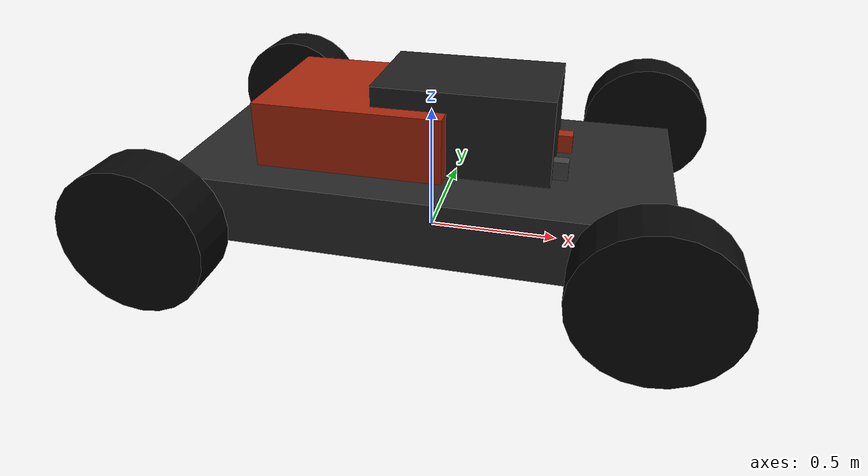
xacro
<?xml version="1.0"?>

<robot xmlns:xacro="http://www.ros.org/wiki/xacro" name="4ze_vehicle">

  <!-- Vehicle dimensions -->
  <xacro:property name="wheelbase" value="1.640"/>
  <xacro:property name="front_track" value="1.340"/>
  <xacro:property name="rear_track" value="1.380"/>

  <xacro:property name="wheel_radius" value="0.260"/>
  <xacro:property name="wheel_width" value="0.178"/>

  <xacro:property name="ground_clearance" value="0.080"/>

  <xacro:property name="chassis_length" value="1.800"/>
  <xacro:property name="chassis_width" value="0.850"/>
  <xacro:property name="chassis_height" value="0.250"/>

  <!-- Materials -->
  <material name="chassis_material">
    <color rgba="0.15 0.15 0.15 1.0"/>
  </material>

  <material name="wheel_material">
    <color rgba="0.03 0.03 0.03 1.0"/>
  </material>

  <material name="seat_material">
    <color rgba="0.12 0.12 0.12 1.0"/>
  </material>

  <material name="battery_material">
    <color rgba="0.65 0.15 0.05 1.0"/>
  </material>

  <material name="motor_material">
    <color rgba="0.25 0.25 0.25 1.0"/>
  </material>

  <!-- Base footprint -->
  <link name="base_footprint"/>

  <!-- Main vehicle body -->
  <link name="base_link">
    <visual>
      <origin xyz="0 0 0.205" rpy="0 0 0"/>
      <geometry>
        <box size="${chassis_length} ${chassis_width} ${chassis_height}"/>
      </geometry>
      <material name="chassis_material"/>
    </visual>

    <collision>
      <origin xyz="0 0 0.205" rpy="0 0 0"/>
      <geometry>
        <box size="${chassis_length} ${chassis_width} ${chassis_height}"/>
      </geometry>
    </collision>
  </link>

  <joint name="base_footprint_to_base_link" type="fixed">
    <parent link="base_footprint"/>
    <child link="base_link"/>
    <origin xyz="0 0 0" rpy="0 0 0"/>
  </joint>

  <!-- Wheel macro -->
  <xacro:macro name="wheel" params="name x y">
    <link name="${name}">
      <visual>
        <origin xyz="0 0 0" rpy="${pi/2} 0 0"/>
        <geometry>
          <cylinder radius="${wheel_radius}" length="${wheel_width}"/>
        </geometry>
        <material name="wheel_material"/>
      </visual>

      <collision>
        <origin xyz="0 0 0" rpy="${pi/2} 0 0"/>
        <geometry>
          <cylinder radius="${wheel_radius}" length="${wheel_width}"/>
        </geometry>
      </collision>
    </link>

    <joint name="${name}_joint" type="continuous">
      <parent link="base_link"/>
      <child link="${name}"/>
      <origin xyz="${x} ${y} ${wheel_radius}" rpy="0 0 0"/>
      <axis xyz="0 1 0"/>
    </joint>
  </xacro:macro>

  <!-- Wheels -->
  <xacro:wheel
    name="front_left_wheel"
    x="${wheelbase/2}"
    y="${front_track/2}"/>

  <xacro:wheel
    name="front_right_wheel"
    x="${wheelbase/2}"
    y="${-front_track/2}"/>

  <xacro:wheel
    name="rear_left_wheel"
    x="${-wheelbase/2}"
    y="${rear_track/2}"/>

  <xacro:wheel
    name="rear_right_wheel"
    x="${-wheelbase/2}"
    y="${-rear_track/2}"/>

  <!-- Driver seat -->
  <link name="driver_seat">
    <visual>
      <origin xyz="0 0 0.25" rpy="0 0 0"/>
      <geometry>
        <box size="0.65 0.42 0.50"/>
      </geometry>
      <material name="seat_material"/>
    </visual>
  </link>

  <joint name="driver_seat_joint" type="fixed">
    <parent link="base_link"/>
    <child link="driver_seat"/>
    <origin xyz="0.15 0 0.15" rpy="0 0 0"/>
  </joint>

  <!-- Accumulator mockup -->
  <link name="accumulator">
    <visual>
      <origin xyz="0 0 0.20" rpy="0 0 0"/>
      <geometry>
        <box size="0.70 0.55 0.35"/>
      </geometry>
      <material name="battery_material"/>
    </visual>
  </link>

  <joint name="accumulator_joint" type="fixed">
    <parent link="base_link"/>
    <child link="accumulator"/>
    <origin xyz="-0.25 0 0.20" rpy="0 0 0"/>
  </joint>

  <!-- Rear motor mockup -->
  <link name="motor">
    <visual>
      <origin xyz="0 0 0.15" rpy="0 0 0"/>
      <geometry>
        <cylinder radius="0.16" length="0.30"/>
      </geometry>
      <material name="motor_material"/>
    </visual>
  </link>

  <joint name="motor_joint" type="fixed">
    <parent link="base_link"/>
    <child link="motor"/>
    <origin xyz="-0.82 0 0.15" rpy="0 ${pi/2} 0"/>
  </joint>

  <!-- Accelerator pedal -->
  <link name="accelerator_pedal">
    <visual>
      <origin xyz="0 0 0.11" rpy="0 0 0"/>
      <geometry>
        <box size="0.10 0.045 0.22"/>
      </geometry>
      <material name="motor_material"/>
    </visual>
  </link>

  <joint name="accelerator_joint" type="revolute">
    <parent link="base_link"/>
    <child link="accelerator_pedal"/>
    <origin xyz="0.48 -0.12 0.18" rpy="0 0 0"/>
    <axis xyz="0 1 0"/>
    <limit lower="0.0" upper="0.50" effort="10.0" velocity="2.0"/>
  </joint>

  <!-- Brake pedal -->
  <link name="brake_pedal">
    <visual>
      <origin xyz="0 0 0.11" rpy="0 0 0"/>
      <geometry>
        <box size="0.10 0.055 0.22"/>
      </geometry>
      <material name="battery_material"/>
    </visual>
  </link>

  <joint name="brake_joint" type="revolute">
    <parent link="base_link"/>
    <child link="brake_pedal"/>
    <origin xyz="0.48 0.12 0.18" rpy="0 0 0"/>
    <axis xyz="0 1 0"/>
    <limit lower="0.0" upper="0.50" effort="10.0" velocity="2.0"/>
  </joint>

</robot>
